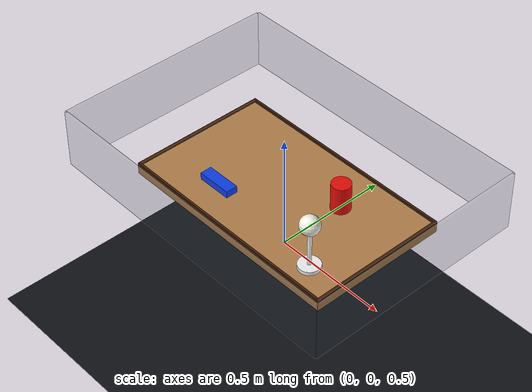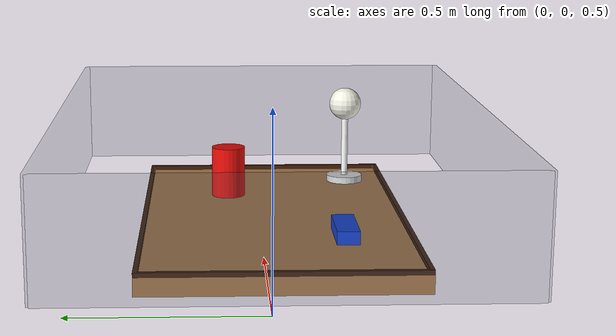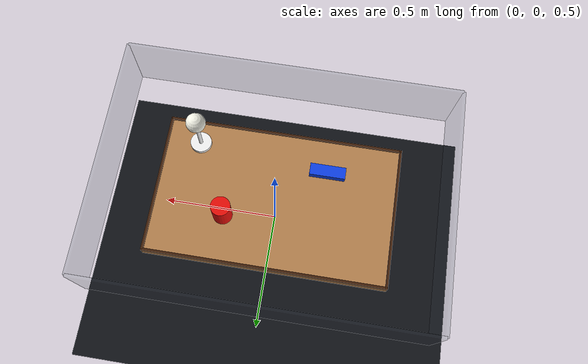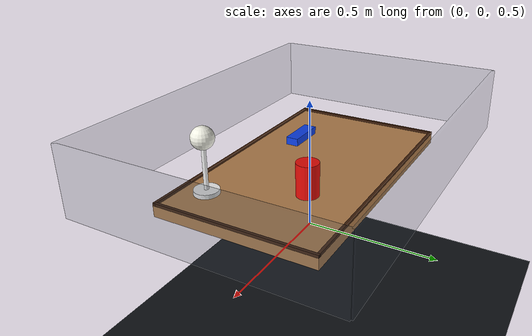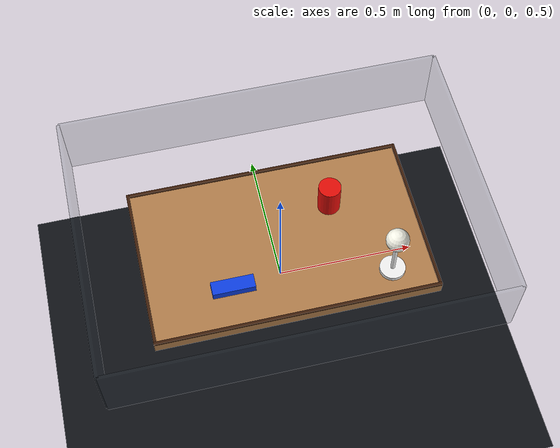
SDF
<?xml version="1.0"?>
<sdf version="1.6"><world name="yuyu_world">
  <!-- 真值/放置服务供仿真验收使用，不参与正常导航控制。 -->
  <plugin name="yuyu_world_state" filename="libgazebo_ros_state.so"><ros><namespace>/gazebo</namespace></ros><update_rate>20</update_rate></plugin>
  <gravity>0 0 -9.81</gravity>
  <physics name="ode" type="ode"><max_step_size>0.001</max_step_size><real_time_update_rate>1000</real_time_update_rate></physics>
  <scene><ambient>0.45 0.45 0.45 1</ambient><background>0.08 0.10 0.13 1</background><shadows>true</shadows></scene>
  <light name="desk_light" type="directional"><pose>0 0 3 0 0 0</pose><diffuse>0.8 0.8 0.8 1</diffuse><specular>0.2 0.2 0.2 1</specular><direction>-0.5 0.2 -1</direction><cast_shadows>true</cast_shadows></light>
  <gui><camera name="user_camera"><pose>.55 -.55 1.13 0 .35 2.35</pose><view_controller>orbit</view_controller></camera></gui>
  <model name="floor"><static>true</static><link name="link">
    <collision name="collision"><geometry><plane><normal>0 0 1</normal><size>20 20</size></plane></geometry></collision>
    <visual name="visual"><geometry><plane><normal>0 0 1</normal><size>20 20</size></plane></geometry><material><ambient>.035 .045 .06 1</ambient><diffuse>.06 .07 .09 1</diffuse></material></visual>
  </link></model>
  <!-- 桌面顶面为 z=0.75；模型 spawn 的 base_footprint 位于该高度。 -->
  <model name="desk"><static>true</static><pose>0 0 .73 0 0 0</pose><link name="top">
    <collision name="collision"><geometry><box><size>1 .6 .04</size></box></geometry><surface><friction><ode><mu>1</mu><mu2>1</mu2></ode></friction></surface></collision>
    <visual name="wood"><geometry><box><size>1 .6 .04</size></box></geometry><material><script><uri>file://media/materials/scripts/gazebo.material</uri><name>Gazebo/Wood</name></script><ambient>.40 .21 .08 1</ambient><diffuse>.55 .30 .12 1</diffuse></material></visual>
  </link></model>
  <!-- 低挡边只作接触保护，防摔判定依赖下视测距。 -->
  <model name="rim_front"><static>true</static><pose>.495 0 .755 0 0 0</pose><link name="link"><collision name="c"><geometry><box><size>.01 .6 .01</size></box></geometry></collision><visual name="v"><geometry><box><size>.01 .6 .01</size></box></geometry><material><diffuse>.25 .12 .04 1</diffuse></material></visual></link></model>
  <model name="rim_back"><static>true</static><pose>-.495 0 .755 0 0 0</pose><link name="link"><collision name="c"><geometry><box><size>.01 .6 .01</size></box></geometry></collision><visual name="v"><geometry><box><size>.01 .6 .01</size></box></geometry><material><diffuse>.25 .12 .04 1</diffuse></material></visual></link></model>
  <model name="rim_left"><static>true</static><pose>0 .295 .755 0 0 0</pose><link name="link"><collision name="c"><geometry><box><size>1 .01 .01</size></box></geometry></collision><visual name="v"><geometry><box><size>1 .01 .01</size></box></geometry><material><diffuse>.25 .12 .04 1</diffuse></material></visual></link></model>
  <model name="rim_right"><static>true</static><pose>0 -.295 .755 0 0 0</pose><link name="link"><collision name="c"><geometry><box><size>1 .01 .01</size></box></geometry></collision><visual name="v"><geometry><box><size>1 .01 .01</size></box></geometry><material><diffuse>.25 .12 .04 1</diffuse></material></visual></link></model>
  <model name="red_cup"><static>true</static><pose>.2 .1 .81 0 0 0</pose><link name="link"><collision name="c"><geometry><cylinder><radius>.04</radius><length>.12</length></cylinder></geometry></collision><visual name="v"><geometry><cylinder><radius>.04</radius><length>.12</length></cylinder></geometry><material><ambient>.7 .04 .03 1</ambient><diffuse>.9 .05 .03 1</diffuse></material></visual></link></model>
  <model name="blue_pencil_box"><static>true</static><pose>-.2 -.15 .765 0 0 0</pose><link name="link"><collision name="c"><geometry><box><size>.15 .05 .03</size></box></geometry></collision><visual name="v"><geometry><box><size>.15 .05 .03</size></box></geometry><material><ambient>.03 .12 .6 1</ambient><diffuse>.05 .25 .9 1</diffuse></material></visual></link></model>
  <model name="white_lamp"><static>true</static><pose>.35 -.2 .75 0 0 0</pose><link name="link">
    <collision name="base"><pose>0 0 .008 0 0 0</pose><geometry><cylinder><radius>.045</radius><length>.016</length></cylinder></geometry></collision>
    <visual name="base"><pose>0 0 .008 0 0 0</pose><geometry><cylinder><radius>.045</radius><length>.016</length></cylinder></geometry><material><diffuse>.95 .95 .95 1</diffuse></material></visual>
    <collision name="pole"><pose>0 0 .10 0 0 0</pose><geometry><cylinder><radius>.008</radius><length>.2</length></cylinder></geometry></collision>
    <visual name="pole"><pose>0 0 .10 0 0 0</pose><geometry><cylinder><radius>.008</radius><length>.2</length></cylinder></geometry><material><diffuse>.95 .95 .95 1</diffuse></material></visual>
    <visual name="shade"><pose>0 0 .2 0 0 0</pose><geometry><sphere><radius>.04</radius></sphere></geometry><material><diffuse>.95 .95 .90 1</diffuse></material></visual>
  </link></model>

<!-- 桌外标定背景，不是桌沿挡墙。 -->
<model name="slam_board_north"><static>true</static><pose>0 0.48 .875 0 0 0</pose>
<link name="panel"><collision name="c"><geometry><box><size>1.36 0.012 .25</size></box></geometry></collision>
<visual name="v"><geometry><box><size>1.36 0.012 .25</size></box></geometry><transparency>.88</transparency><cast_shadows>false</cast_shadows><material><ambient>.14 .17 .20 1</ambient><diffuse>.25 .29 .34 1</diffuse></material></visual></link></model>
<model name="slam_board_south"><static>true</static><pose>0 -0.48 .875 0 0 0</pose>
<link name="panel"><collision name="c"><geometry><box><size>1.36 0.012 .25</size></box></geometry></collision>
<visual name="v"><geometry><box><size>1.36 0.012 .25</size></box></geometry><transparency>.88</transparency><cast_shadows>false</cast_shadows><material><ambient>.14 .17 .20 1</ambient><diffuse>.25 .29 .34 1</diffuse></material></visual></link></model>
<model name="slam_board_east"><static>true</static><pose>0.68 0 .875 0 0 0</pose>
<link name="panel"><collision name="c"><geometry><box><size>0.012 0.96 .25</size></box></geometry></collision>
<visual name="v"><geometry><box><size>0.012 0.96 .25</size></box></geometry><transparency>.88</transparency><cast_shadows>false</cast_shadows><material><ambient>.14 .17 .20 1</ambient><diffuse>.25 .29 .34 1</diffuse></material></visual></link></model>
<model name="slam_board_west"><static>true</static><pose>-0.68 0 .875 0 0 0</pose>
<link name="panel"><collision name="c"><geometry><box><size>0.012 0.96 .25</size></box></geometry></collision>
<visual name="v"><geometry><box><size>0.012 0.96 .25</size></box></geometry><transparency>.88</transparency><cast_shadows>false</cast_shadows><material><ambient>.14 .17 .20 1</ambient><diffuse>.25 .29 .34 1</diffuse></material></visual></link></model>
</world></sdf>
